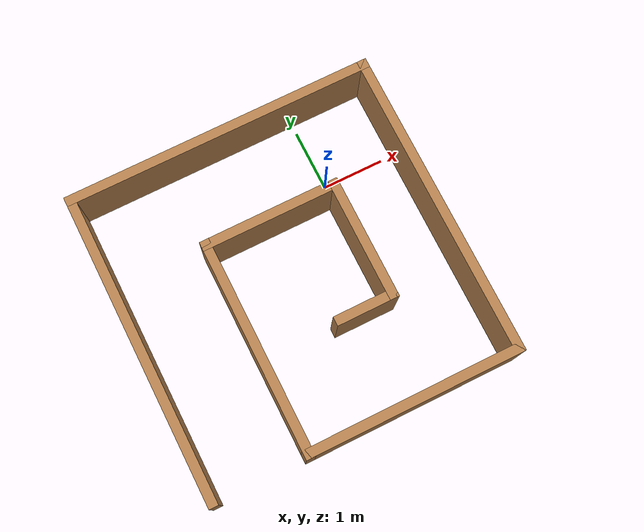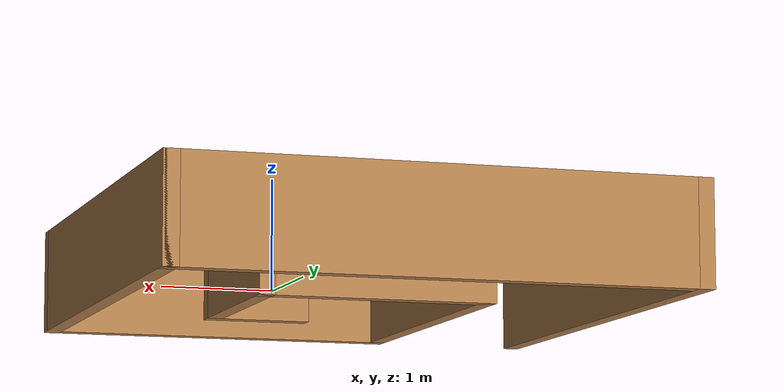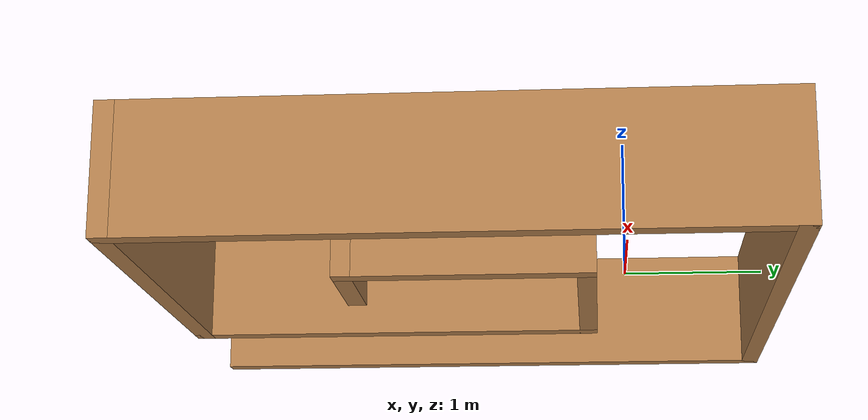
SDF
<?xml version='1.0'?>
<sdf version='1.7'>
  <model name='groupA1_custom'>
    <pose>-1.194 -1.208 0 0 -0 0</pose>
    <link name='Wall_0'>
      <collision name='Wall_0_Collision'>
        <geometry>
          <box>
            <size>5 0.15 1</size>
          </box>
        </geometry>
        <pose>0 0 0.5 0 -0 0</pose>
      </collision>
      <visual name='Wall_0_Visual'>
        <pose>0 0 0.5 0 -0 0</pose>
        <geometry>
          <box>
            <size>5 0.15 1</size>
          </box>
        </geometry>
        <material>
          <script>
            <uri>file://media/materials/scripts/gazebo.material</uri>
            <name>Gazebo/Wood</name>
          </script>
          <ambient>1 1 1 1</ambient>
        </material>
        <meta>
          <layer>0</layer>
        </meta>
      </visual>
      <pose>-2.425 0 0 0 -0 1.5708</pose>
    </link>
    <link name='Wall_3'>
      <collision name='Wall_3_Collision'>
        <geometry>
          <box>
            <size>5 0.15 1</size>
          </box>
        </geometry>
        <pose>0 0 0.5 0 -0 0</pose>
      </collision>
      <visual name='Wall_3_Visual'>
        <pose>0 0 0.5 0 -0 0</pose>
        <geometry>
          <box>
            <size>5 0.15 1</size>
          </box>
        </geometry>
        <material>
          <script>
            <uri>file://media/materials/scripts/gazebo.material</uri>
            <name>Gazebo/Wood</name>
          </script>
          <ambient>1 1 1 1</ambient>
        </material>
        <meta>
          <layer>0</layer>
        </meta>
      </visual>
      <pose>0 2.425 0 0 -0 0</pose>
    </link>
    <link name='Wall_4'>
      <collision name='Wall_4_Collision'>
        <geometry>
          <box>
            <size>5 0.15 1</size>
          </box>
        </geometry>
        <pose>0 0 0.5 0 -0 0</pose>
      </collision>
      <visual name='Wall_4_Visual'>
        <pose>0 0 0.5 0 -0 0</pose>
        <geometry>
          <box>
            <size>5 0.15 1</size>
          </box>
        </geometry>
        <material>
          <script>
            <uri>file://media/materials/scripts/gazebo.material</uri>
            <name>Gazebo/Wood</name>
          </script>
          <ambient>1 1 1 1</ambient>
        </material>
        <meta>
          <layer>0</layer>
        </meta>
      </visual>
      <pose>2.425 0 0 0 -0 -1.5708</pose>
    </link>
    <link name='Wall_5'>
      <collision name='Wall_5_Collision'>
        <geometry>
          <box>
            <size>3.5 0.15 1</size>
          </box>
        </geometry>
        <pose>0 0 0.5 0 -0 0</pose>
      </collision>
      <visual name='Wall_5_Visual'>
        <pose>0 0 0.5 0 -0 0</pose>
        <geometry>
          <box>
            <size>3.5 0.15 1</size>
          </box>
        </geometry>
        <material>
          <script>
            <uri>file://media/materials/scripts/gazebo.material</uri>
            <name>Gazebo/Wood</name>
          </script>
          <ambient>1 1 1 1</ambient>
        </material>
        <meta>
          <layer>0</layer>
        </meta>
      </visual>
      <pose>0.75 -2.425 0 0 -0 3.14159</pose>
    </link>
    <link name='Wall_6'>
      <collision name='Wall_6_Collision'>
        <geometry>
          <box>
            <size>3.5 0.15 1</size>
          </box>
        </geometry>
        <pose>0 0 0.5 0 -0 0</pose>
      </collision>
      <visual name='Wall_6_Visual'>
        <pose>0 0 0.5 0 -0 0</pose>
        <geometry>
          <box>
            <size>3.5 0.15 1</size>
          </box>
        </geometry>
        <material>
          <script>
            <uri>file://media/materials/scripts/gazebo.material</uri>
            <name>Gazebo/Wood</name>
          </script>
          <ambient>1 1 1 1</ambient>
        </material>
        <meta>
          <layer>0</layer>
        </meta>
      </visual>
      <pose>-0.925 -0.75 0 0 -0 1.5708</pose>
    </link>
    <link name='Wall_7'>
      <collision name='Wall_7_Collision'>
        <geometry>
          <box>
            <size>2.25 0.15 1</size>
          </box>
        </geometry>
        <pose>0 0 0.5 0 -0 0</pose>
      </collision>
      <visual name='Wall_7_Visual'>
        <pose>0 0 0.5 0 -0 0</pose>
        <geometry>
          <box>
            <size>2.25 0.15 1</size>
          </box>
        </geometry>
        <material>
          <script>
            <uri>file://media/materials/scripts/gazebo.material</uri>
            <name>Gazebo/Wood</name>
          </script>
          <ambient>1 1 1 1</ambient>
        </material>
        <meta>
          <layer>0</layer>
        </meta>
      </visual>
      <pose>0.125 0.925 0 0 -0 0</pose>
    </link>
    <link name='Wall_8'>
      <collision name='Wall_8_Collision'>
        <geometry>
          <box>
            <size>2 0.15 1</size>
          </box>
        </geometry>
        <pose>0 0 0.5 0 -0 0</pose>
      </collision>
      <visual name='Wall_8_Visual'>
        <pose>0 0 0.5 0 -0 0</pose>
        <geometry>
          <box>
            <size>2 0.15 1</size>
          </box>
        </geometry>
        <material>
          <script>
            <uri>file://media/materials/scripts/gazebo.material</uri>
            <name>Gazebo/Wood</name>
          </script>
          <ambient>1 1 1 1</ambient>
        </material>
        <meta>
          <layer>0</layer>
        </meta>
      </visual>
      <pose>1.175 0 0 0 -0 -1.5708</pose>
    </link>
    <link name='Wall_9'>
      <collision name='Wall_9_Collision'>
        <geometry>
          <box>
            <size>1 0.15 1</size>
          </box>
        </geometry>
        <pose>0 0 0.5 0 -0 0</pose>
      </collision>
      <visual name='Wall_9_Visual'>
        <pose>0 0 0.5 0 -0 0</pose>
        <geometry>
          <box>
            <size>1 0.15 1</size>
          </box>
        </geometry>
        <material>
          <script>
            <uri>file://media/materials/scripts/gazebo.material</uri>
            <name>Gazebo/Wood</name>
          </script>
          <ambient>1 1 1 1</ambient>
        </material>
        <meta>
          <layer>0</layer>
        </meta>
      </visual>
      <pose>0.75 -0.925 0 0 -0 3.14159</pose>
    </link>
    <static>1</static>
  </model>
</sdf>
